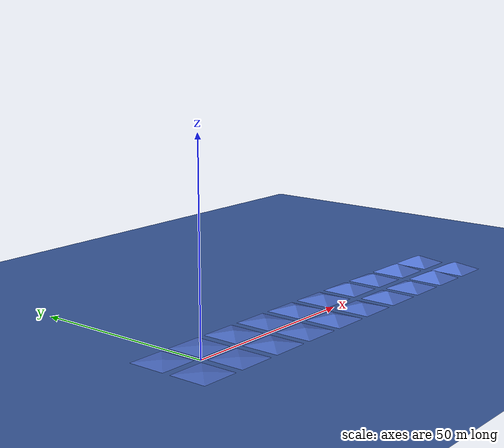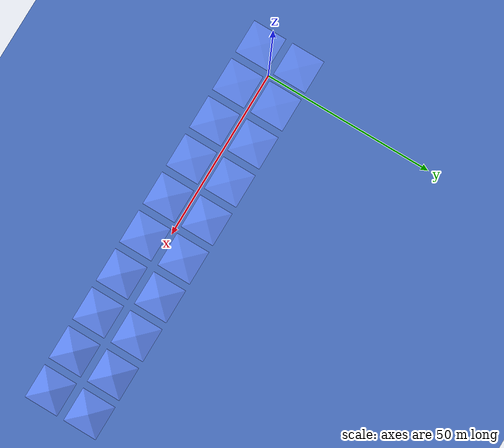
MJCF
<mujoco>
    <extension>
        <plugin plugin="mujoco.sdf.torus">
            <instance name="torus">
                <config key="radius1" value="0.077103"/>
                <config key="radius2" value="0.03"/>
            </instance>
        </plugin>
    </extension>

    <default>
        <default class="kyon_all">
            <joint armature="0.234" frictionloss="4.68" damping="1.7"/>
            <geom condim="3" solref="0.005 1.2" solimp="0.995 0.995 0.001 0.5 2" friction="0.7 0.005 0.001"/>
        </default>
        <default class="wheels">
            <joint armature="0.234" damping="1.7"/>
            <geom condim="3" solref="0.005 1.2" solimp="0.995 0.995 0.001 0.5 2" friction="0.7 0.005 0.001"/>
        </default>
        <default class="terrain">
            <geom condim="3" solref="0.004 1.2" solimp="0.995 0.995 0.001 0.5 2" friction="0.7 0.005 0.001" group="1"/>
        </default>
    </default>

    <asset>
        <mesh name="torus">
            <plugin instance="torus"/>
        </mesh>

        <texture type="skybox" builtin="gradient" rgb1="0.3 0.5 0.7" rgb2="0 0 0" width="512" height="3072"/>
        <texture type="cube" name="body" builtin="flat" mark="cross" rgb1="0.8 0.6 0.4" rgb2="0.8 0.6 0.4" markrgb="1 1 1" width="127" height="762"/>
        <texture type="2d" name="grid" builtin="checker" rgb1="0.7 0.8 0.95" rgb2="0.85 0.9 1" width="512" height="512"/>
        <material name="body" texture="body" texuniform="true" rgba="0.8 0.6 0.4 1"/>
        <material name="grid" texture="grid" texuniform="true" rgba="0.5 0.6 0.7 1"/>
        <material name="ground" texture="grid" texuniform="true" rgba="0.35 0.5 0.75 1"/>
        <material name="step_light" texture="grid" texuniform="true" rgba="0.65 0.82 1 1"/>
        <material name="step_dark" texture="grid" texuniform="true" rgba="0.35 0.5 0.75 1"/>
        <material name="slope" texuniform="true" rgba="0.35 0.5 0.9 1"/>
        <mesh name="pyramid_slope_05deg" file="/home/user/forest_ws/src/iit-kyon-ros-pkg/kyon_urdf/meshes/pyramid_slope_05deg_10x10.stl"/>
        <mesh name="pyramid_slope_10deg" file="/home/user/forest_ws/src/iit-kyon-ros-pkg/kyon_urdf/meshes/pyramid_slope_10deg_10x10.stl"/>
        <mesh name="pyramid_slope_15deg" file="/home/user/forest_ws/src/iit-kyon-ros-pkg/kyon_urdf/meshes/pyramid_slope_15deg_10x10.stl"/>
        <mesh name="pyramid_slope_20deg" file="/home/user/forest_ws/src/iit-kyon-ros-pkg/kyon_urdf/meshes/pyramid_slope_20deg_10x10.stl"/>
        <mesh name="pyramid_slope_25deg" file="/home/user/forest_ws/src/iit-kyon-ros-pkg/kyon_urdf/meshes/pyramid_slope_25deg_10x10.stl"/>

    </asset>
    <worldbody>
        <geom name="floor" type="plane" size="0 0 0.05" group="1" material="ground" class="terrain"/>
        <!-- Five pyramidal staircases in a row, increasing step height and decreasing tread width -->
    <!-- Five pyramidal staircases in a row, increasing step height and decreasing tread width -->
        <body name="slope_course" pos="0 0 0">
            <!-- lvl 1: 5 deg slopes at original lvl-0 positions -->
            <body name="lvl1_slope_1" pos="-6 6 0">
                <geom name="lvl1_slope_1" type="mesh" mesh="pyramid_slope_05deg" material="slope" class="terrain"/>
            </body>
            <body name="lvl1_slope_2" pos="-6 -6 0">
                <geom name="lvl1_slope_2" type="mesh" mesh="pyramid_slope_05deg" material="slope" class="terrain"/>
            </body>
            <body name="lvl1_slope_3" pos="6 -6 0">
                <geom name="lvl1_slope_3" type="mesh" mesh="pyramid_slope_05deg" material="slope" class="terrain"/>
            </body>
            <body name="lvl1_slope_4" pos="6 6 0">
                <geom name="lvl1_slope_4" type="mesh" mesh="pyramid_slope_05deg" material="slope" class="terrain"/>
            </body>

            <!-- lvl 2: 10 deg slopes (mirrors stairs lvl 1) -->
            <body name="lvl2_slope_1" pos="18 6 0">
                <geom name="lvl2_slope_1" type="mesh" mesh="pyramid_slope_10deg" material="slope" class="terrain"/>
            </body>
            <body name="lvl2_slope_2" pos="18 -6 0">
                <geom name="lvl2_slope_2" type="mesh" mesh="pyramid_slope_10deg" material="slope" class="terrain"/>
            </body>
            <body name="lvl2_slope_3" pos="30 -6 0">
                <geom name="lvl2_slope_3" type="mesh" mesh="pyramid_slope_10deg" material="slope" class="terrain"/>
            </body>
            <body name="lvl2_slope_4" pos="30 6 0">
                <geom name="lvl2_slope_4" type="mesh" mesh="pyramid_slope_10deg" material="slope" class="terrain"/>
            </body>

            <!-- lvl 3: 15 deg slopes (mirrors stairs lvl 2) -->
            <body name="lvl3_slope_1" pos="42 6 0">
                <geom name="lvl3_slope_1" type="mesh" mesh="pyramid_slope_15deg" material="slope" class="terrain"/>
            </body>
            <body name="lvl3_slope_2" pos="42 -6 0">
                <geom name="lvl3_slope_2" type="mesh" mesh="pyramid_slope_15deg" material="slope" class="terrain"/>
            </body>
            <body name="lvl3_slope_3" pos="54 -6 0">
                <geom name="lvl3_slope_3" type="mesh" mesh="pyramid_slope_15deg" material="slope" class="terrain"/>
            </body>
            <body name="lvl3_slope_4" pos="54 6 0">
                <geom name="lvl3_slope_4" type="mesh" mesh="pyramid_slope_15deg" material="slope" class="terrain"/>
            </body>

            <!-- lvl 4: 20 deg slopes (mirrors stairs lvl 3) -->
            <body name="lvl4_slope_1" pos="66 6 0">
                <geom name="lvl4_slope_1" type="mesh" mesh="pyramid_slope_20deg" material="slope" class="terrain"/>
            </body>
            <body name="lvl4_slope_2" pos="66 -6 0">
                <geom name="lvl4_slope_2" type="mesh" mesh="pyramid_slope_20deg" material="slope" class="terrain"/>
            </body>
            <body name="lvl4_slope_3" pos="78 -6 0">
                <geom name="lvl4_slope_3" type="mesh" mesh="pyramid_slope_20deg" material="slope" class="terrain"/>
            </body>
            <body name="lvl4_slope_4" pos="78 6 0">
                <geom name="lvl4_slope_4" type="mesh" mesh="pyramid_slope_20deg" material="slope" class="terrain"/>
            </body>

            <!-- lvl 5: 25 deg slopes (mirrors stairs lvl 4) -->
            <body name="lvl5_slope_1" pos="90 6 0">
                <geom name="lvl5_slope_1" type="mesh" mesh="pyramid_slope_25deg" material="slope" class="terrain"/>
            </body>
            <body name="lvl5_slope_2" pos="90 -6 0">
                <geom name="lvl5_slope_2" type="mesh" mesh="pyramid_slope_25deg" material="slope" class="terrain"/>
            </body>
            <body name="lvl5_slope_3" pos="102 -6 0">
                <geom name="lvl5_slope_3" type="mesh" mesh="pyramid_slope_25deg" material="slope" class="terrain"/>
            </body>
            <body name="lvl5_slope_4" pos="102 6 0">
                <geom name="lvl5_slope_4" type="mesh" mesh="pyramid_slope_25deg" material="slope" class="terrain"/>
            </body>
        </body>
    </worldbody>
    <visual>
    	<headlight ambient="0.5 0.5 0.5"/>
    </visual>
</mujoco>
